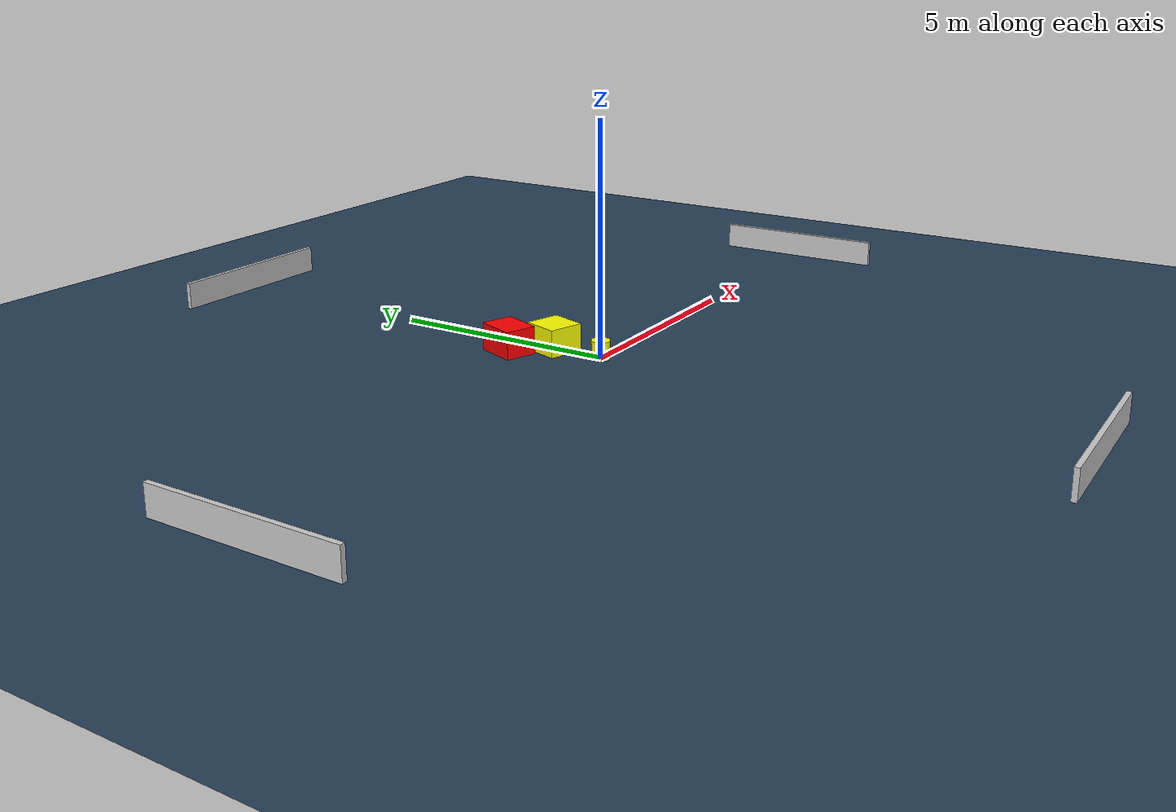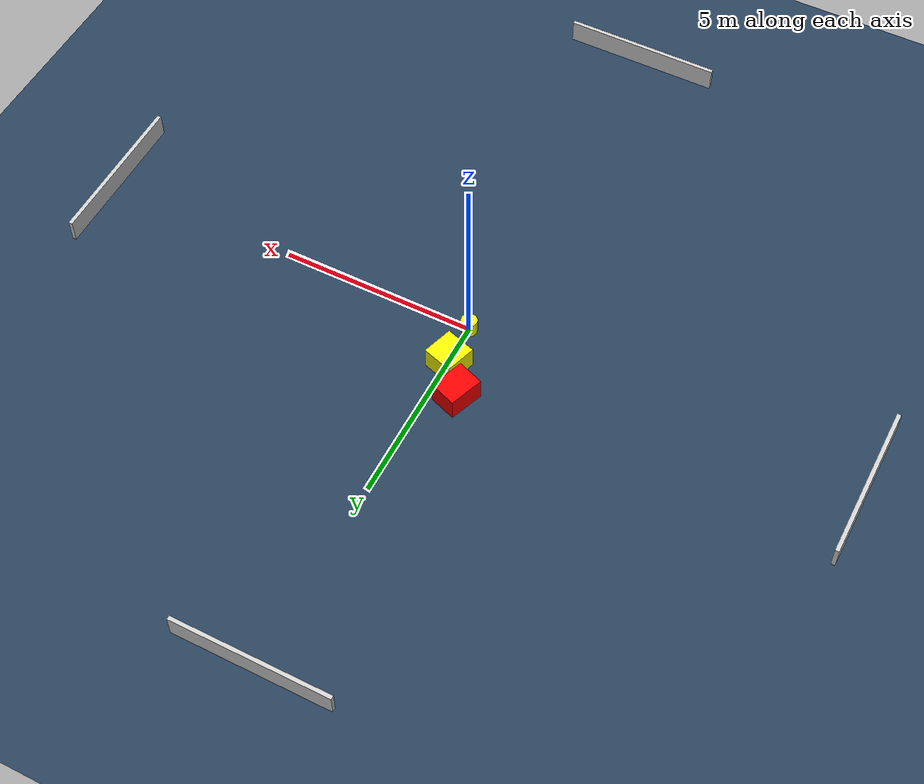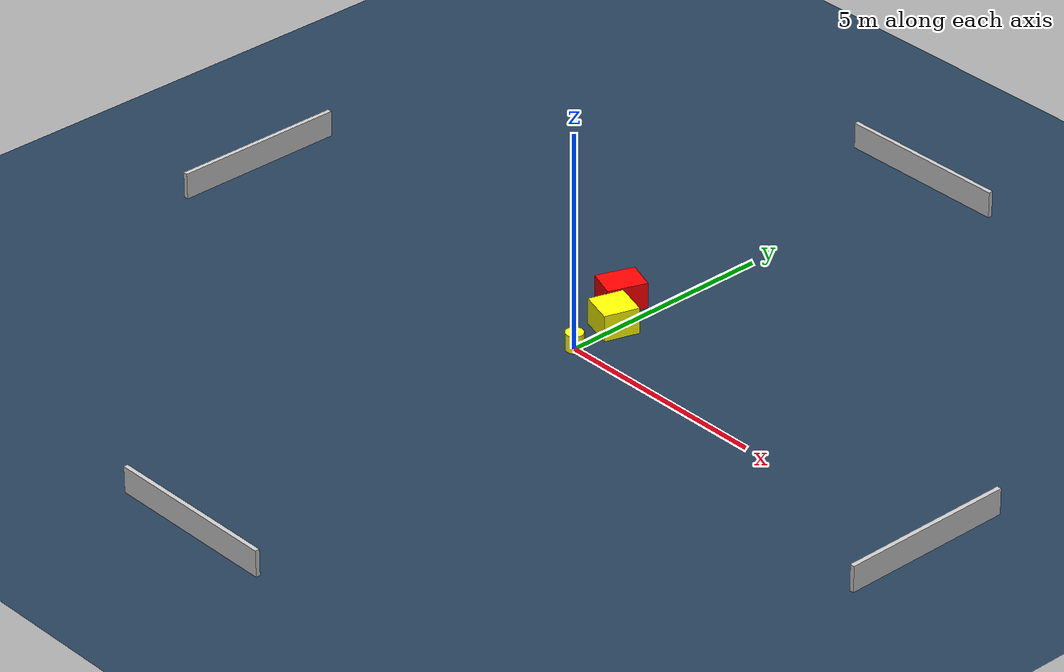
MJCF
<?xml version="1.0" ?>
<mujoco model="generated_environment">
  <option timestep="0.01" integrator="RK4" cone="elliptic"/>
  <default>
    <geom density="1"/>
  </default>
  <asset>
    <texture builtin="gradient" height="3072" name="skybox" rgb1="0.3 0.5 0.7" rgb2="0 0 0" type="skybox" width="512"/>
    <texture builtin="checker" height="300" name="groundplane" rgb1="0.2 0.3 0.4" rgb2="0.1 0.2 0.3" type="2d" width="300"/>
    <material name="groundplane" reflectance="0.2" texrepeat="5 5" texture="groundplane"/>
  </asset>
  <worldbody>
    <light dir="0 0 -1" directional="true" pos="0 0 1.5"/>
    <geom condim="3" friction="0.5 0.005 0.001" material="groundplane" name="floor" pos="0 0 0" size="0 0 0.05" type="plane"/>
    <body name="walls">
      <geom name="wall_1" condim="4" pos="-10.0 0.0 0.3" rgba="0.800000011920929 0.800000011920929 0.800000011920929 1.0" size="0.05 2.0 0.3" type="box"/>
      <geom name="wall_2" condim="4" pos="10.0 0.0 0.3" rgba="0.800000011920929 0.800000011920929 0.800000011920929 1.0" size="0.05 2.0 0.3" type="box"/>
      <geom name="wall_3" condim="4" pos="0.0 -10.0 0.3" rgba="0.800000011920929 0.800000011920929 0.800000011920929 1.0" size="2.0 0.05 0.3" type="box"/>
      <geom name="wall_4" condim="4" pos="0.0 10.0 0.3" rgba="0.800000011920929 0.800000011920929 0.800000011920929 1.0" size="2.0 0.05 0.3" type="box"/>
    </body>
    <body name="robot">
      <joint name="joint_x" type="slide" pos="0 0 0" axis="1 0 0"/>
      <joint name="joint_y" type="slide" pos="0 0 0" axis="0 1 0"/>
      <geom name="robot" type="cylinder" pos="0.0 0.0 0.2" size="0.2 0.2 0.0" mass="5.0" friction="1.0 0.005 0.0001" condim="4" rgba="1.0 1.0 0.0 1.0"/>
    </body>
    <body name="obstacle_1_movable">
      <geom name="obstacle_1_movable" condim="4" pos="-0.045693947850563625 1.120965659486799 0.3" euler="0 0 162.57664998704107" friction="0.0 0.005 0.001" rgba="1.0 1.0 0.0 1.0" size="0.3904998091463407 0.39964591256894444 0.3" type="box" mass="0.1"/>
      <joint type="free"/>
    </body>
    <body name="obstacle_2_static">
      <geom name="obstacle_2_static" condim="4" pos="-0.6354974143729973 1.8725788180824545 0.3" euler="0 0 339.75037981985054" friction="0.0 0.005 0.001" rgba="1.0 0.0 0.0 1.0" size="0.3483010988813343 0.4476207816796748 0.3" type="box"/>
    </body>
  </worldbody>
  <actuator>
    <motor name="actuator_x" joint="joint_x" gear="1" ctrlrange="-1 1"/>
    <motor name="actuator_y" joint="joint_y" gear="1" ctrlrange="-1 1"/>
  </actuator>
</mujoco>
